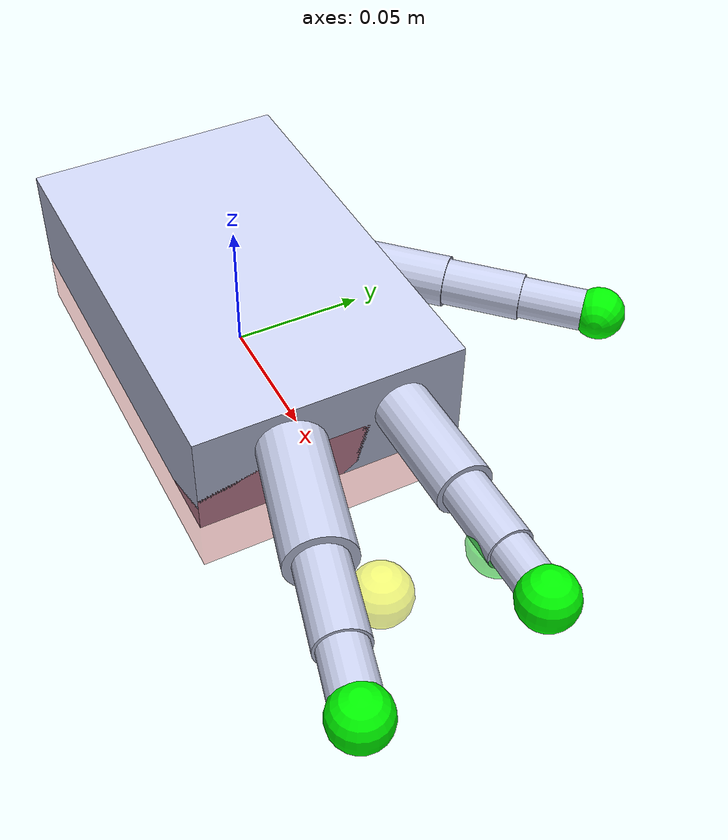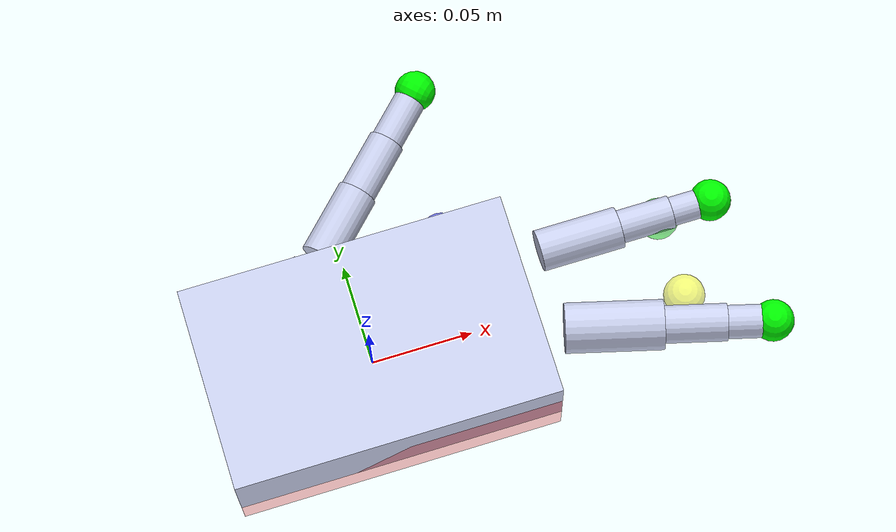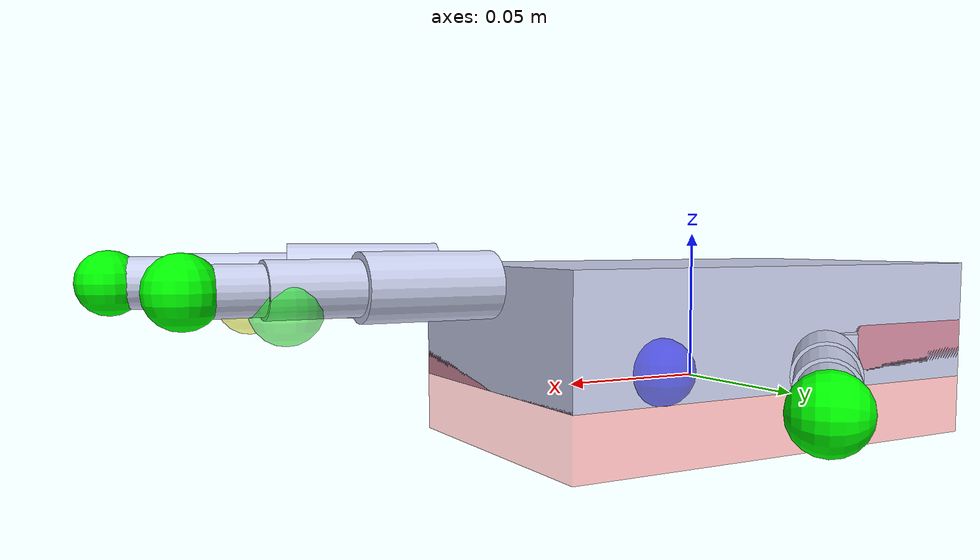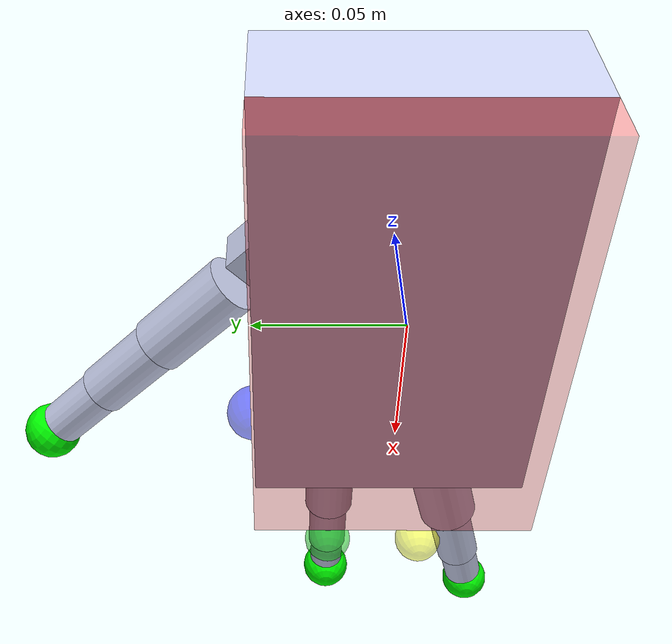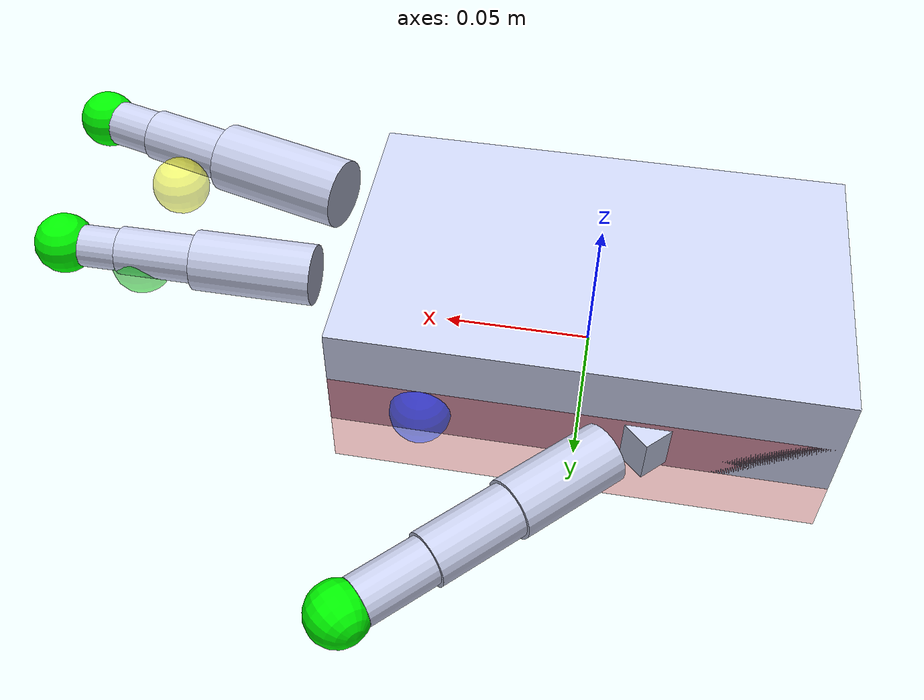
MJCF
<mujoco model="7DHAND_URDF_ASM_FINAL">
  <compiler angle="radian" balanceinertia="true" />

  <!-- Meshes removed - using primitive shapes instead -->

  <contact>
     <exclude body1="PALM_RZ" body2="I_L1"/>
     <exclude body1="PALM_RZ" body2="I_L2"/>
     <exclude body1="PALM_RZ" body2="I_L3"/>
     <exclude body1="PALM_RZ" body2="P_L1"/>
     <exclude body1="PALM_RZ" body2="P_L2"/>
     <exclude body1="PALM_RZ" body2="P_L3"/>
     <exclude body1="PALM_RZ" body2="T_L1"/>
     <exclude body1="PALM_RZ" body2="T_L2"/>
     <exclude body1="PALM_RZ" body2="T_L3"/>
  </contact>

  <worldbody>
    <camera name="fpv" pos="-0.2 0 0.5" euler="0 -.5 -1.5"/>
    <light pos="0 -0.2 1" dir="0 0.2 -0.8" directional="true"/>

    <body name="universe">
      <body name="PALM_RX" pos="0 0 0">
        <inertial pos="0.0 0 0" mass="2.0" diaginertia="0.01 0.01 0.01"/>
        <joint name="J_RX" pos="0 0 0" axis="1 0 0"/>
        <body name="PALM_RY" pos="0 0 0">
          <inertial pos="0.0 0 0" mass="2.0" diaginertia="0.01 0.01 0.01"/>
          <joint name="J_RY" pos="0 0 0" axis="0 1 0"/>
          <body name="PALM_RZ" pos="0 0 0">
            <inertial pos="0 0 0.02" mass="2.0" diaginertia="1e-1 1e-1 1e-1"/>
            <joint name="J_RZ" pos="0 0 0" axis="0 0 1" />
            <!-- Palm box: positioned so center of bottom edge is at origin (0,0,0) -->
            <geom type="box" pos="0 0 0.02" size="0.08 0.05 0.02" rgba="0.792157 0.819608 0.933333 1" friction="1.0 1.0 1.0" condim="4"/>

            <!-- Index finger: emerging from top front of palm with clearance -->
            <body name="I_L1" pos="0.09 0.02 0.035">
              <inertial pos="0.0200664 0 0" quat="0 0.707107 0 0.707107" mass="0.0145937" diaginertia="3.54454e-03 3.17103e-03 1.12378e-03"/>
              <joint name="JI_L1" pos="0 0 0" axis="0 -1 0" range="-1.7 1.7"/>
              <geom type="cylinder" size="0.01 0.02" pos="0.02 0 0" quat="0.707107 0 0.707107 0" rgba="0.792157 0.819608 0.933333 1" friction="1 1 1" condim="4"/>
              <body name="I_L2" pos="0.04 0 0">
                <inertial pos="0.013 0 0" quat="0.5 0.5 0.5 0.5" mass="0.00807722" diaginertia="1.10721e-03 1.10721e-03 1.10721e-03"/>
                <joint name="JI_L2" pos="0 0 0" axis="0 -1 0" range="-1.5 0"/>
                <geom type="cylinder" size="0.008 0.013" pos="0.013 0 0" quat="0.707107 0 0.707107 0" rgba="0.792157 0.819608 0.933333 1" friction="1 1 1" condim="4"/>
                <body name="I_L3" pos="0.026 0 0">
                  <inertial pos="0.00867838 -2.38418e-08 0.00103919" quat="8.51691e-05 0.644627 -4.01557e-05 0.764497" mass="0.00698372" diaginertia="8.23583e-03 6.23148e-03 4.91692e-04"/>
                  <joint name="JI_L3" pos="0 0 0" axis="0 -1 0" range="-1.5 0"/>
                  <geom type="cylinder" size="0.007 0.01" pos="0.01 0 0" quat="0.707107 0 0.707107 0" rgba="0.792157 0.819608 0.933333 1" friction="1 1 1" condim="6"/>
                  <site name="index_tip_track" pos="0.02 0 0.0" size="0.01" rgba="0 1 0 1" type="sphere"/>
                </body>
              </body>
            </body>
            <!-- Middle finger (using P_L1 as middle): emerging from top front of palm with clearance -->
            <body name="P_L1" pos="0.09 -0.02 0.035" quat="0.991445 0 0 -0.130526">
              <inertial pos="0.0216837 -0.0224072 2.84086e-09" quat="0.602209 0.3706 -0.602209 0.3706" mass="0.0597291" diaginertia="3.48717e-03 2.09158e-03 1.70288e-03"/>
              <joint name="JP_L1" pos="0 0 0" axis="0 -1 0" range="-1.7 1.7"/>
              <geom type="cylinder" size="0.012 0.0235" pos="0.0235 0 0" quat="0.707107 0 0.707107 0" rgba="0.792157 0.819608 0.933333 1" friction="1 1 1" condim="4"/>
              <body name="P_L2" pos="0.047 0 0">
                <inertial pos="0.0149319 -0.00720065 0" quat="0.545667 0.44972 -0.545667 0.44972" mass="0.0169251" diaginertia="3.84381e-03 2.43827e-03 2.27313e-03"/>
                <joint name="JP_L2" pos="0 0 0" axis="0 -1 0" range="-1.5 0"/>
                <geom type="cylinder" size="0.009 0.015" pos="0.015 0 0" quat="0.707107 0 0.707107 0" rgba="0.792157 0.819608 0.933333 1" friction="1 1 1" condim="4"/>
                <body name="P_L3" pos="0.03 0 0">
                  <inertial pos="0.00744067 -0.00658516 0.00107081" quat="0.574485 0.307694 -0.663201 0.368043" mass="0.010488" diaginertia="1.98946e-03 1.98946e-03 1.98946e-03"/>
                  <joint name="JP_L3" pos="0 0 0" axis="0 -1 0" range="-1.5 0"/>
                  <geom type="cylinder" size="0.008 0.011" pos="0.011 0 0" quat="0.707107 0 0.707107 0" rgba="0.792157 0.819608 0.933333 1" friction="1 1 1" condim="6"/>
                  <site name="middle_tip_track" pos="0.022 0 0.0" size="0.01" rgba="0 1 0 1" type="sphere"/>
                </body>
              </body>
            </body>
            <!-- Thumb: positioned at side of palm near bottom -->
            <body name="T_L1" pos="-0.02 0.045 0.01" quat="0.92388 0 0 0.382683">
              <inertial pos="-0.0004369 -1.81277e-08 -0.00424998" quat="0.707107 0.707107 0 0" mass="0.00487039" diaginertia="9.01599e-03 8.59373e-03 6.05737e-03"/>
              <joint name="JT_L1" pos="0 0 0" axis="0 1 0" range="0 1.5"/>
              <geom type="box" size="0.0075 0.01 0.008" pos="0 0 0" rgba="0.792157 0.819608 0.933333 1" friction="1 1 1" condim="4"/>
              <body name="T_L2" pos="0.015 0 0" quat="0.707107 -0.707107 0 0">
                <inertial pos="0.0193414 0.000765409 4.77161e-09" quat="0.122354 0.696441 -0.122354 0.696441" mass="0.0132625" diaginertia="3.72005e-03 2.42908e-03 1.97833e-03"/>
                <joint name="JT_L2" pos="0 0 0" axis="0 1 0" range="-1.5 1.5"/>
                <geom type="cylinder" size="0.01 0.0185" pos="0.0185 0 0" quat="0.707107 0 0.707107 0" rgba="0.792157 0.819608 0.933333 1" friction="1 1 1" condim="4"/>
                <body name="T_L3" pos="0.037 0 0">
                  <inertial pos="0.015 0 0" quat="0 0.707107 0 0.707107" mass="0.0147396" diaginertia="2.85103e-03 2.68735e-03 8.18967e-03"/>
                  <joint name="JT_L3" pos="0 0 0" axis="0 1 0" range="-1.5 1.5"/>
                  <geom type="cylinder" size="0.009 0.015" pos="0.015 0 0" quat="0.707107 0 0.707107 0" rgba="0.792157 0.819608 0.933333 1" friction="1 1 1" condim="4"/>
                  <body name="T_L4" pos="0.03 0 0">
                    <inertial pos="0.0109382 1.02724e-06 0.000948967" quat="3.49199e-05 0.671544 5.47723e-05 0.740964" mass="0.0113121" diaginertia="1.68368e-03 1.68368e-03 1.68368e-03"/>
                    <joint name="JT_L4" pos="0 0 0" axis="0 1 0" range="-0 1.5"/>
                    <geom type="cylinder" size="0.008 0.012" pos="0.012 0 0" quat="0.707107 0 0.707107 0" rgba="0.792157 0.819608 0.933333 1" friction="1 1 1" condim="4"/>
                    <site name="thumb_tip_track" pos="0.03 0 0.0" size="0.01" rgba="0 1 0 1" type="sphere"/>
                  </body>
                </body>
              </body>
            </body>
          </body>
        </body>
      </body>
    </body>

    <!-- Mocap bodies for tracking visualization (tips only) -->
    <body name="Wrist" mocap="true" pos="0 0 0">
      <!-- Wrist box sized to match palm (0.08 x 0.05 x 0.02) -->
      <geom type="box" size="0.08 0.05 0.02" rgba="1 0 0 0.3" contype="0" conaffinity="0"/>
    </body>

    <body name="IndexTip" mocap="true" pos="0.15 0.02 0.03">
      <geom type="sphere" size="0.01" rgba="0 1 0 0.5" contype="0" conaffinity="0"/>
    </body>

    <body name="ThumbTip" mocap="true" pos="0.05 0.05 0.01">
      <geom type="sphere" size="0.01" rgba="0 0 1 0.5" contype="0" conaffinity="0"/>
    </body>

    <body name="MiddleTip" mocap="true" pos="0.15 -0.02 0.03">
      <geom type="sphere" size="0.01" rgba="1 1 0 0.5" contype="0" conaffinity="0"/>
    </body>

  </worldbody>

  <actuator>
    <motor name="J_RX" joint="J_RX" ctrlrange="-100.1 100.1"/>
    <motor name="J_RY" joint="J_RY" ctrlrange="-100.1 100.1"/>
    <motor name="J_RZ" joint="J_RZ" ctrlrange="-100.1 100.1"/>

    <motor name="JI_L1" joint="JI_L1" ctrlrange="-80.1 80.1"/>
    <motor name="JI_L2" joint="JI_L2" ctrlrange="-80.1 80.1"/>
    <motor name="JI_L3" joint="JI_L3" ctrlrange="-80.1 80.1"/>
    <motor name="JP_L1" joint="JP_L1" ctrlrange="-80.1 80.1"/>
    <motor name="JP_L2" joint="JP_L2" ctrlrange="-80.1 80.1"/>
    <motor name="JP_L3" joint="JP_L3" ctrlrange="-80.1 80.1"/>
    <motor name="JT_L1" joint="JT_L1" ctrlrange="-80.1 80.1"/>
    <motor name="JT_L2" joint="JT_L2" ctrlrange="-80.1 80.1"/>
    <motor name="JT_L3" joint="JT_L3" ctrlrange="-80.1 80.1"/>
    <motor name="JT_L4" joint="JT_L4" ctrlrange="-80.1 80.1"/>
  </actuator>
</mujoco>
